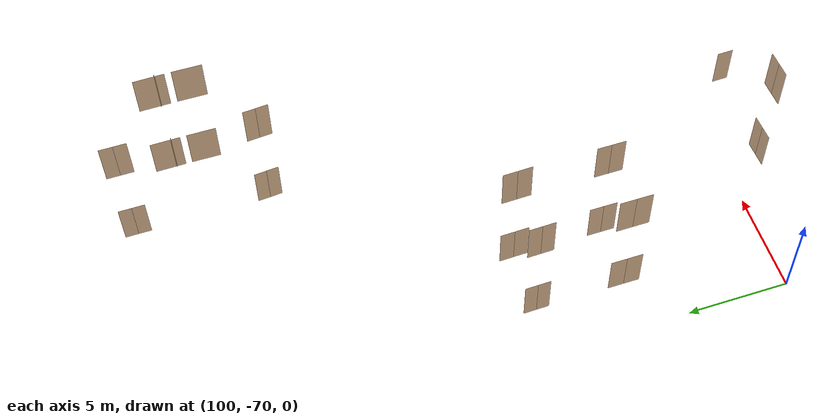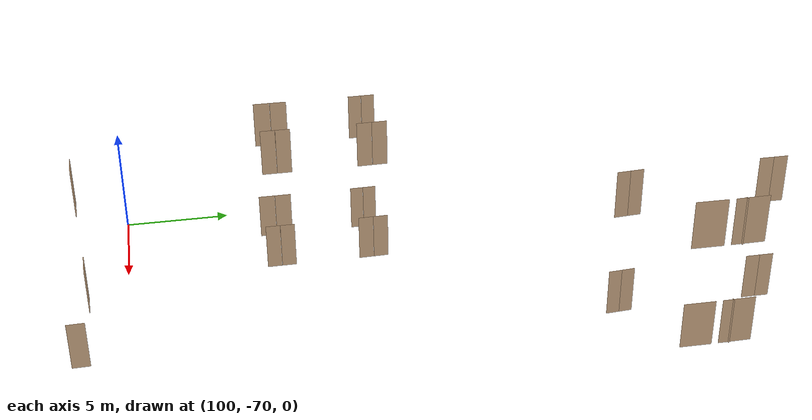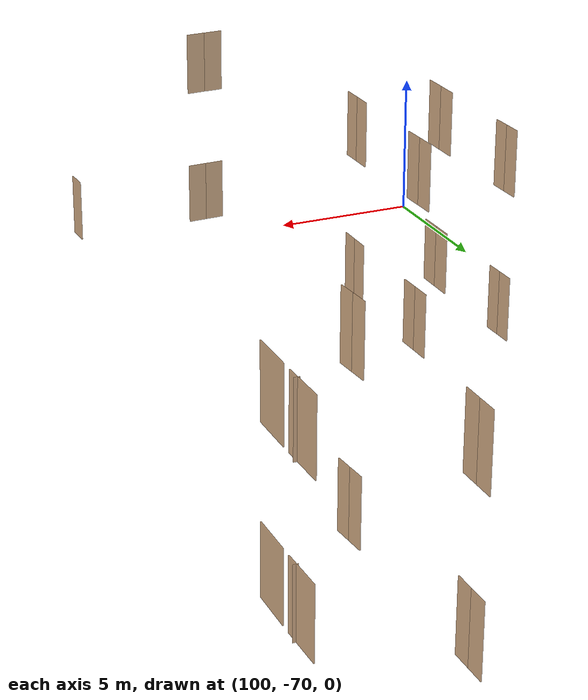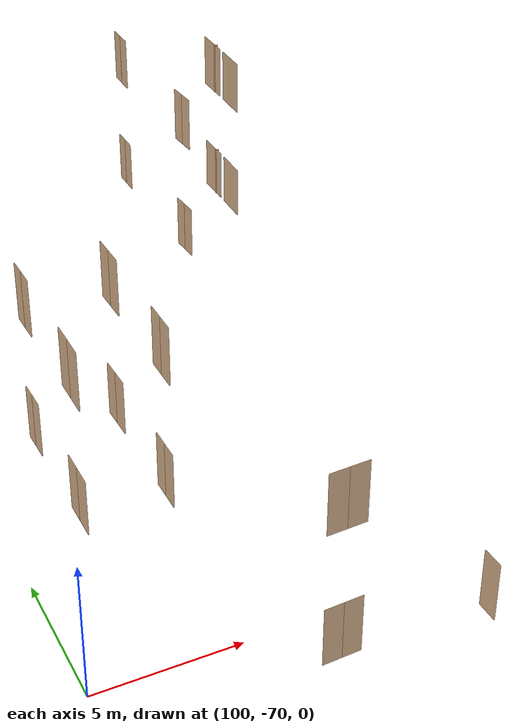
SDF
<sdf version="1.7">
 <world name="sim_world">
  <model name="nullA13">
   <pose>107.36898501058738 -71.7955524908058 0.0 0 0 0.049127123464644595</pose>
   <link name="right">
    <pose>0.3374000409255043 0 1.11 0 0 0</pose>
    <visual name="right_visual">
     <geometry><box><size>0.6648000818510086 0.03 2.2</size></box></geometry>
     <material>
      <ambient>0.5 0.25 0 0.6</ambient>
      <diffuse>0.5 0.25 0 0.6</diffuse>
      <pbr><metal><metalness>0.0</metalness></metal></pbr>
     </material>
    </visual>
    <collision name="right_collision">
     <geometry><box><size>0.6648000818510086 0.03 2.2</size></box></geometry>
     <surface><contact><collide_bitmask>0x02</collide_bitmask></contact></surface>
    </collision>
    <inertial>
     <mass>50.0</mass>
     <inertia><ixx>20.17041666666667</ixx><iyy>22.00816312012129</iyy><izz>1.8452464534546156</izz></inertia>
    </inertial>
   </link>
   <joint name="right_joint" type="revolute">
    <parent>world</parent>
    <child>right</child>
    <axis><xyz>0 0 -1</xyz><limit><lower>0</lower><upper>1.57</upper></limit></axis>
    <pose>0.3374000409255043 0 0 0 0 0</pose>
   </joint>
   <link name="left">
    <pose>-0.3374000409255043 0 1.11 0 0 0</pose>
    <visual name="left_visual">
     <geometry><box><size>0.6648000818510086 0.03 2.2</size></box></geometry>
     <material>
      <ambient>0.5 0.25 0 0.6</ambient>
      <diffuse>0.5 0.25 0 0.6</diffuse>
      <pbr><metal><metalness>0.0</metalness></metal></pbr>
     </material>
    </visual>
    <collision name="left_collision">
     <geometry><box><size>0.6648000818510086 0.03 2.2</size></box></geometry>
     <surface><contact><collide_bitmask>0x02</collide_bitmask></contact></surface>
    </collision>
    <inertial>
     <mass>50.0</mass>
     <inertia><ixx>20.17041666666667</ixx><iyy>22.00816312012129</iyy><izz>1.8452464534546156</izz></inertia>
    </inertial>
   </link>
   <joint name="left_joint" type="revolute">
    <parent>world</parent>
    <child>left</child>
    <axis><xyz>0 0 -1</xyz><limit><lower>-1.57</lower><upper>0</upper></limit></axis>
    <pose>-0.3374000409255043 0 0 0 0 0</pose>
   </joint>
   <plugin name="register_component" filename="libregister_component.so">
    <component name="Door">
     <v_max_door>0.5</v_max_door>
     <a_max_door>0.3</a_max_door>
     <a_nom_door>0.15</a_nom_door>
     <dx_min_door>0.01</dx_min_door>
     <f_max_door>500.0</f_max_door>
     <ros_interface>true</ros_interface>
     <door name="nullA13" type="DoubleSwingDoor" left_joint_name="left_joint" right_joint_name="right_joint"/>
    </component>
   </plugin>
  </model>
  <model name="nullA14">
   <pose>112.3087952747131 -72.03100793120106 0.0 0 0 1.5962024927042915</pose>
   <link name="right">
    <pose>0 0 1.11 0 0 0</pose>
    <visual name="right_visual">
     <geometry><box><size>0.7959692663468669 0.03 2.2</size></box></geometry>
     <material>
      <ambient>0.5 0.25 0 0.6</ambient>
      <diffuse>0.5 0.25 0 0.6</diffuse>
      <pbr><metal><metalness>0.0</metalness></metal></pbr>
     </material>
    </visual>
    <collision name="right_collision">
     <geometry><box><size>0.7959692663468669 0.03 2.2</size></box></geometry>
     <surface><contact><collide_bitmask>0x02</collide_bitmask></contact></surface>
    </collision>
    <inertial>
     <mass>50.0</mass>
     <inertia><ixx>20.17041666666667</ixx><iyy>22.80652947070321</iyy><izz>2.64361280403654</izz></inertia>
    </inertial>
   </link>
   <joint name="right_joint" type="revolute">
    <parent>world</parent>
    <child>right</child>
    <axis><xyz>0 0 -1</xyz><limit><lower>0</lower><upper>1.57</upper></limit></axis>
    <pose>0.40298463317343347 0 0 0 0 0</pose>
   </joint>
   <plugin name="register_component" filename="libregister_component.so">
    <component name="Door">
     <v_max_door>0.5</v_max_door>
     <a_max_door>0.3</a_max_door>
     <a_nom_door>0.15</a_nom_door>
     <dx_min_door>0.01</dx_min_door>
     <f_max_door>500.0</f_max_door>
     <ros_interface>true</ros_interface>
     <door name="nullA14" type="SwingDoor" left_joint_name="empty_joint" right_joint_name="right_joint"/>
    </component>
   </plugin>
  </model>
  <model name="nullA15">
   <pose>102.49811452877157 -62.665883483784725 0.0 0 0 -1.5707963267948966</pose>
   <link name="right">
    <pose>0.3940828504030609 0 1.11 0 0 0</pose>
    <visual name="right_visual">
     <geometry><box><size>0.7781657008061218 0.03 2.2</size></box></geometry>
     <material>
      <ambient>0.5 0.25 0 0.6</ambient>
      <diffuse>0.5 0.25 0 0.6</diffuse>
      <pbr><metal><metalness>0.0</metalness></metal></pbr>
     </material>
    </visual>
    <collision name="right_collision">
     <geometry><box><size>0.7781657008061218 0.03 2.2</size></box></geometry>
     <surface><contact><collide_bitmask>0x02</collide_bitmask></contact></surface>
    </collision>
    <inertial>
     <mass>50.0</mass>
     <inertia><ixx>20.17041666666667</ixx><iyy>22.68975774129618</iyy><izz>2.526841074629511</izz></inertia>
    </inertial>
   </link>
   <joint name="right_joint" type="revolute">
    <parent>world</parent>
    <child>right</child>
    <axis><xyz>0 0 -1</xyz><limit><lower>0</lower><upper>1.57</upper></limit></axis>
    <pose>0.3940828504030609 0 0 0 0 0</pose>
   </joint>
   <link name="left">
    <pose>-0.3940828504030609 0 1.11 0 0 0</pose>
    <visual name="left_visual">
     <geometry><box><size>0.7781657008061218 0.03 2.2</size></box></geometry>
     <material>
      <ambient>0.5 0.25 0 0.6</ambient>
      <diffuse>0.5 0.25 0 0.6</diffuse>
      <pbr><metal><metalness>0.0</metalness></metal></pbr>
     </material>
    </visual>
    <collision name="left_collision">
     <geometry><box><size>0.7781657008061218 0.03 2.2</size></box></geometry>
     <surface><contact><collide_bitmask>0x02</collide_bitmask></contact></surface>
    </collision>
    <inertial>
     <mass>50.0</mass>
     <inertia><ixx>20.17041666666667</ixx><iyy>22.68975774129618</iyy><izz>2.526841074629511</izz></inertia>
    </inertial>
   </link>
   <joint name="left_joint" type="revolute">
    <parent>world</parent>
    <child>left</child>
    <axis><xyz>0 0 -1</xyz><limit><lower>-1.57</lower><upper>0</upper></limit></axis>
    <pose>-0.3940828504030609 0 0 0 0 0</pose>
   </joint>
   <plugin name="register_component" filename="libregister_component.so">
    <component name="Door">
     <v_max_door>0.5</v_max_door>
     <a_max_door>0.3</a_max_door>
     <a_nom_door>0.15</a_nom_door>
     <dx_min_door>0.01</dx_min_door>
     <f_max_door>500.0</f_max_door>
     <ros_interface>true</ros_interface>
     <door name="nullA15" type="DoubleSwingDoor" left_joint_name="left_joint" right_joint_name="right_joint"/>
    </component>
   </plugin>
  </model>
  <model name="nullA16">
   <pose>105.55959619599547 -62.71038021471827 0.0 0 0 1.5707963267948966</pose>
   <link name="right">
    <pose>0.3463396671495982 0 1.11 0 0 0</pose>
    <visual name="right_visual">
     <geometry><box><size>0.6826793342991964 0.03 2.2</size></box></geometry>
     <material>
      <ambient>0.5 0.25 0 0.6</ambient>
      <diffuse>0.5 0.25 0 0.6</diffuse>
      <pbr><metal><metalness>0.0</metalness></metal></pbr>
     </material>
    </visual>
    <collision name="right_collision">
     <geometry><box><size>0.6826793342991964 0.03 2.2</size></box></geometry>
     <surface><contact><collide_bitmask>0x02</collide_bitmask></contact></surface>
    </collision>
    <inertial>
     <mass>50.0</mass>
     <inertia><ixx>20.17041666666667</ixx><iyy>22.108546139496646</iyy><izz>1.9456294728299748</izz></inertia>
    </inertial>
   </link>
   <joint name="right_joint" type="revolute">
    <parent>world</parent>
    <child>right</child>
    <axis><xyz>0 0 -1</xyz><limit><lower>0</lower><upper>1.57</upper></limit></axis>
    <pose>0.3463396671495982 0 0 0 0 0</pose>
   </joint>
   <link name="left">
    <pose>-0.3463396671495982 0 1.11 0 0 0</pose>
    <visual name="left_visual">
     <geometry><box><size>0.6826793342991964 0.03 2.2</size></box></geometry>
     <material>
      <ambient>0.5 0.25 0 0.6</ambient>
      <diffuse>0.5 0.25 0 0.6</diffuse>
      <pbr><metal><metalness>0.0</metalness></metal></pbr>
     </material>
    </visual>
    <collision name="left_collision">
     <geometry><box><size>0.6826793342991964 0.03 2.2</size></box></geometry>
     <surface><contact><collide_bitmask>0x02</collide_bitmask></contact></surface>
    </collision>
    <inertial>
     <mass>50.0</mass>
     <inertia><ixx>20.17041666666667</ixx><iyy>22.108546139496646</iyy><izz>1.9456294728299748</izz></inertia>
    </inertial>
   </link>
   <joint name="left_joint" type="revolute">
    <parent>world</parent>
    <child>left</child>
    <axis><xyz>0 0 -1</xyz><limit><lower>-1.57</lower><upper>0</upper></limit></axis>
    <pose>-0.3463396671495982 0 0 0 0 0</pose>
   </joint>
   <plugin name="register_component" filename="libregister_component.so">
    <component name="Door">
     <v_max_door>0.5</v_max_door>
     <a_max_door>0.3</a_max_door>
     <a_nom_door>0.15</a_nom_door>
     <dx_min_door>0.01</dx_min_door>
     <f_max_door>500.0</f_max_door>
     <ros_interface>true</ros_interface>
     <door name="nullA16" type="DoubleSwingDoor" left_joint_name="left_joint" right_joint_name="right_joint"/>
    </component>
   </plugin>
  </model>
  <model name="nullA17">
   <pose>102.48714811099973 -58.25309233255325 0.0 0 0 -1.5534430454923887</pose>
   <link name="right">
    <pose>0.3159911949177678 0 1.11 0 0 0</pose>
    <visual name="right_visual">
     <geometry><box><size>0.6219823898355356 0.03 2.2</size></box></geometry>
     <material>
      <ambient>0.5 0.25 0 0.6</ambient>
      <diffuse>0.5 0.25 0 0.6</diffuse>
      <pbr><metal><metalness>0.0</metalness></metal></pbr>
     </material>
    </visual>
    <collision name="right_collision">
     <geometry><box><size>0.6219823898355356 0.03 2.2</size></box></geometry>
     <surface><contact><collide_bitmask>0x02</collide_bitmask></contact></surface>
    </collision>
    <inertial>
     <mass>50.0</mass>
     <inertia><ixx>20.17041666666667</ixx><iyy>21.77859205527302</iyy><izz>1.6156753886063506</izz></inertia>
    </inertial>
   </link>
   <joint name="right_joint" type="revolute">
    <parent>world</parent>
    <child>right</child>
    <axis><xyz>0 0 -1</xyz><limit><lower>0</lower><upper>1.57</upper></limit></axis>
    <pose>0.3159911949177678 0 0 0 0 0</pose>
   </joint>
   <link name="left">
    <pose>-0.3159911949177678 0 1.11 0 0 0</pose>
    <visual name="left_visual">
     <geometry><box><size>0.6219823898355356 0.03 2.2</size></box></geometry>
     <material>
      <ambient>0.5 0.25 0 0.6</ambient>
      <diffuse>0.5 0.25 0 0.6</diffuse>
      <pbr><metal><metalness>0.0</metalness></metal></pbr>
     </material>
    </visual>
    <collision name="left_collision">
     <geometry><box><size>0.6219823898355356 0.03 2.2</size></box></geometry>
     <surface><contact><collide_bitmask>0x02</collide_bitmask></contact></surface>
    </collision>
    <inertial>
     <mass>50.0</mass>
     <inertia><ixx>20.17041666666667</ixx><iyy>21.77859205527302</iyy><izz>1.6156753886063506</izz></inertia>
    </inertial>
   </link>
   <joint name="left_joint" type="revolute">
    <parent>world</parent>
    <child>left</child>
    <axis><xyz>0 0 -1</xyz><limit><lower>-1.57</lower><upper>0</upper></limit></axis>
    <pose>-0.3159911949177678 0 0 0 0 0</pose>
   </joint>
   <plugin name="register_component" filename="libregister_component.so">
    <component name="Door">
     <v_max_door>0.5</v_max_door>
     <a_max_door>0.3</a_max_door>
     <a_nom_door>0.15</a_nom_door>
     <dx_min_door>0.01</dx_min_door>
     <f_max_door>500.0</f_max_door>
     <ros_interface>true</ros_interface>
     <door name="nullA17" type="DoubleSwingDoor" left_joint_name="left_joint" right_joint_name="right_joint"/>
    </component>
   </plugin>
  </model>
  <model name="nullA18">
   <pose>105.56303196626925 -58.22641953638698 0.0 0 0 1.59237232780342</pose>
   <link name="right">
    <pose>0.35783111303596443 0 1.11 0 0 0</pose>
    <visual name="right_visual">
     <geometry><box><size>0.7056622260719289 0.03 2.2</size></box></geometry>
     <material>
      <ambient>0.5 0.25 0 0.6</ambient>
      <diffuse>0.5 0.25 0 0.6</diffuse>
      <pbr><metal><metalness>0.0</metalness></metal></pbr>
     </material>
    </visual>
    <collision name="right_collision">
     <geometry><box><size>0.7056622260719289 0.03 2.2</size></box></geometry>
     <surface><contact><collide_bitmask>0x02</collide_bitmask></contact></surface>
    </collision>
    <inertial>
     <mass>50.0</mass>
     <inertia><ixx>20.17041666666667</ixx><iyy>22.241496572103298</iyy><izz>2.078579905436625</izz></inertia>
    </inertial>
   </link>
   <joint name="right_joint" type="revolute">
    <parent>world</parent>
    <child>right</child>
    <axis><xyz>0 0 -1</xyz><limit><lower>0</lower><upper>1.57</upper></limit></axis>
    <pose>0.35783111303596443 0 0 0 0 0</pose>
   </joint>
   <link name="left">
    <pose>-0.35783111303596443 0 1.11 0 0 0</pose>
    <visual name="left_visual">
     <geometry><box><size>0.7056622260719289 0.03 2.2</size></box></geometry>
     <material>
      <ambient>0.5 0.25 0 0.6</ambient>
      <diffuse>0.5 0.25 0 0.6</diffuse>
      <pbr><metal><metalness>0.0</metalness></metal></pbr>
     </material>
    </visual>
    <collision name="left_collision">
     <geometry><box><size>0.7056622260719289 0.03 2.2</size></box></geometry>
     <surface><contact><collide_bitmask>0x02</collide_bitmask></contact></surface>
    </collision>
    <inertial>
     <mass>50.0</mass>
     <inertia><ixx>20.17041666666667</ixx><iyy>22.241496572103298</iyy><izz>2.078579905436625</izz></inertia>
    </inertial>
   </link>
   <joint name="left_joint" type="revolute">
    <parent>world</parent>
    <child>left</child>
    <axis><xyz>0 0 -1</xyz><limit><lower>-1.57</lower><upper>0</upper></limit></axis>
    <pose>-0.35783111303596443 0 0 0 0 0</pose>
   </joint>
   <plugin name="register_component" filename="libregister_component.so">
    <component name="Door">
     <v_max_door>0.5</v_max_door>
     <a_max_door>0.3</a_max_door>
     <a_nom_door>0.15</a_nom_door>
     <dx_min_door>0.01</dx_min_door>
     <f_max_door>500.0</f_max_door>
     <ros_interface>true</ros_interface>
     <door name="nullA18" type="DoubleSwingDoor" left_joint_name="left_joint" right_joint_name="right_joint"/>
    </component>
   </plugin>
  </model>
  <model name="nullA19">
   <pose>112.65758906348682 -48.05892352984884 0.0 0 0 -1.4988063360851256</pose>
   <link name="right">
    <pose>0.30668308941766353 0 1.11 0 0 0</pose>
    <visual name="right_visual">
     <geometry><box><size>0.6033661788353271 0.03 2.2</size></box></geometry>
     <material>
      <ambient>0.5 0.25 0 0.6</ambient>
      <diffuse>0.5 0.25 0 0.6</diffuse>
      <pbr><metal><metalness>0.0</metalness></metal></pbr>
     </material>
    </visual>
    <collision name="right_collision">
     <geometry><box><size>0.6033661788353271 0.03 2.2</size></box></geometry>
     <surface><contact><collide_bitmask>0x02</collide_bitmask></contact></surface>
    </collision>
    <inertial>
     <mass>50.0</mass>
     <inertia><ixx>20.17041666666667</ixx><iyy>21.68354477400977</iyy><izz>1.5206281073430996</izz></inertia>
    </inertial>
   </link>
   <joint name="right_joint" type="revolute">
    <parent>world</parent>
    <child>right</child>
    <axis><xyz>0 0 -1</xyz><limit><lower>0</lower><upper>1.57</upper></limit></axis>
    <pose>0.30668308941766353 0 0 0 0 0</pose>
   </joint>
   <link name="left">
    <pose>-0.30668308941766353 0 1.11 0 0 0</pose>
    <visual name="left_visual">
     <geometry><box><size>0.6033661788353271 0.03 2.2</size></box></geometry>
     <material>
      <ambient>0.5 0.25 0 0.6</ambient>
      <diffuse>0.5 0.25 0 0.6</diffuse>
      <pbr><metal><metalness>0.0</metalness></metal></pbr>
     </material>
    </visual>
    <collision name="left_collision">
     <geometry><box><size>0.6033661788353271 0.03 2.2</size></box></geometry>
     <surface><contact><collide_bitmask>0x02</collide_bitmask></contact></surface>
    </collision>
    <inertial>
     <mass>50.0</mass>
     <inertia><ixx>20.17041666666667</ixx><iyy>21.68354477400977</iyy><izz>1.5206281073430996</izz></inertia>
    </inertial>
   </link>
   <joint name="left_joint" type="revolute">
    <parent>world</parent>
    <child>left</child>
    <axis><xyz>0 0 -1</xyz><limit><lower>-1.57</lower><upper>0</upper></limit></axis>
    <pose>-0.30668308941766353 0 0 0 0 0</pose>
   </joint>
   <plugin name="register_component" filename="libregister_component.so">
    <component name="Door">
     <v_max_door>0.5</v_max_door>
     <a_max_door>0.3</a_max_door>
     <a_nom_door>0.15</a_nom_door>
     <dx_min_door>0.01</dx_min_door>
     <f_max_door>500.0</f_max_door>
     <ros_interface>true</ros_interface>
     <door name="nullA19" type="DoubleSwingDoor" left_joint_name="left_joint" right_joint_name="right_joint"/>
    </component>
   </plugin>
  </model>
  <model name="nullA20">
   <pose>112.61347096846102 -41.44568278910809 0.0 0 0 -1.5707963267948966</pose>
   <link name="right">
    <pose>0.32451902002303257 0 1.11 0 0 0</pose>
    <visual name="right_visual">
     <geometry><box><size>0.6390380400460651 0.03 2.2</size></box></geometry>
     <material>
      <ambient>0.5 0.25 0 0.6</ambient>
      <diffuse>0.5 0.25 0 0.6</diffuse>
      <pbr><metal><metalness>0.0</metalness></metal></pbr>
     </material>
    </visual>
    <collision name="right_collision">
     <geometry><box><size>0.6390380400460651 0.03 2.2</size></box></geometry>
     <surface><contact><collide_bitmask>0x02</collide_bitmask></contact></surface>
    </collision>
    <inertial>
     <mass>50.0</mass>
     <inertia><ixx>20.17041666666667</ixx><iyy>21.86820673594132</iyy><izz>1.7052900692746515</izz></inertia>
    </inertial>
   </link>
   <joint name="right_joint" type="revolute">
    <parent>world</parent>
    <child>right</child>
    <axis><xyz>0 0 -1</xyz><limit><lower>0</lower><upper>1.57</upper></limit></axis>
    <pose>0.32451902002303257 0 0 0 0 0</pose>
   </joint>
   <link name="left">
    <pose>-0.32451902002303257 0 1.11 0 0 0</pose>
    <visual name="left_visual">
     <geometry><box><size>0.6390380400460651 0.03 2.2</size></box></geometry>
     <material>
      <ambient>0.5 0.25 0 0.6</ambient>
      <diffuse>0.5 0.25 0 0.6</diffuse>
      <pbr><metal><metalness>0.0</metalness></metal></pbr>
     </material>
    </visual>
    <collision name="left_collision">
     <geometry><box><size>0.6390380400460651 0.03 2.2</size></box></geometry>
     <surface><contact><collide_bitmask>0x02</collide_bitmask></contact></surface>
    </collision>
    <inertial>
     <mass>50.0</mass>
     <inertia><ixx>20.17041666666667</ixx><iyy>21.86820673594132</iyy><izz>1.7052900692746515</izz></inertia>
    </inertial>
   </link>
   <joint name="left_joint" type="revolute">
    <parent>world</parent>
    <child>left</child>
    <axis><xyz>0 0 -1</xyz><limit><lower>-1.57</lower><upper>0</upper></limit></axis>
    <pose>-0.32451902002303257 0 0 0 0 0</pose>
   </joint>
   <plugin name="register_component" filename="libregister_component.so">
    <component name="Door">
     <v_max_door>0.5</v_max_door>
     <a_max_door>0.3</a_max_door>
     <a_nom_door>0.15</a_nom_door>
     <dx_min_door>0.01</dx_min_door>
     <f_max_door>500.0</f_max_door>
     <ros_interface>true</ros_interface>
     <door name="nullA20" type="DoubleSwingDoor" left_joint_name="left_joint" right_joint_name="right_joint"/>
    </component>
   </plugin>
  </model>
  <model name="nullA33">
   <pose>115.93593094097113 -45.62506593855644 0.0 0 0 1.5583194605857504</pose>
   <link name="right">
    <pose>0 0 1.11 0 0 0</pose>
    <visual name="right_visual">
     <geometry><box><size>1.4556874687365362 0.03 2.2</size></box></geometry>
     <material>
      <ambient>0.5 0.25 0 0.6</ambient>
      <diffuse>0.5 0.25 0 0.6</diffuse>
      <pbr><metal><metalness>0.0</metalness></metal></pbr>
     </material>
    </visual>
    <collision name="right_collision">
     <geometry><box><size>1.4556874687365362 0.03 2.2</size></box></geometry>
     <surface><contact><collide_bitmask>0x02</collide_bitmask></contact></surface>
    </collision>
    <inertial>
     <mass>50.0</mass>
     <inertia><ixx>20.17041666666667</ixx><iyy>28.995941694319104</iyy><izz>8.833025027652434</izz></inertia>
    </inertial>
   </link>
   <joint name="right_joint" type="prismatic">
    <parent>world</parent>
    <child>right</child>
    <axis>
     <xyz>1 0 0</xyz>
     <limit><lower>0.0</lower><upper>1.4656874687365362</upper><effort>500.0</effort></limit>
    </axis>
   </joint>
   <plugin name="register_component" filename="libregister_component.so">
    <component name="Door">
     <v_max_door>0.2</v_max_door>
     <a_max_door>0.2</a_max_door>
     <a_nom_door>0.08</a_nom_door>
     <dx_min_door>0.001</dx_min_door>
     <f_max_door>100.0</f_max_door>
     <ros_interface>true</ros_interface>
     <door name="nullA33" type="SlidingDoor" left_joint_name="empty_joint" right_joint_name="right_joint"/>
    </component>
   </plugin>
  </model>
  <model name="nullA34">
   <pose>115.93793630892685 -43.82167920427953 0.0 0 0 1.580233682194616</pose>
   <link name="right">
    <pose>0 0 1.11 0 0 0</pose>
    <visual name="right_visual">
     <geometry><box><size>1.502731839136134 0.03 2.2</size></box></geometry>
     <material>
      <ambient>0.5 0.25 0 0.6</ambient>
      <diffuse>0.5 0.25 0 0.6</diffuse>
      <pbr><metal><metalness>0.0</metalness></metal></pbr>
     </material>
    </visual>
    <collision name="right_collision">
     <geometry><box><size>1.502731839136134 0.03 2.2</size></box></geometry>
     <surface><contact><collide_bitmask>0x02</collide_bitmask></contact></surface>
    </collision>
    <inertial>
     <mass>50.0</mass>
     <inertia><ixx>20.17041666666667</ixx><iyy>29.575845751472787</iyy><izz>9.412929084806116</izz></inertia>
    </inertial>
   </link>
   <joint name="right_joint" type="prismatic">
    <parent>world</parent>
    <child>right</child>
    <axis>
     <xyz>1 0 0</xyz>
     <limit><lower>0.0</lower><upper>1.512731839136134</upper><effort>500.0</effort></limit>
    </axis>
   </joint>
   <plugin name="register_component" filename="libregister_component.so">
    <component name="Door">
     <v_max_door>0.2</v_max_door>
     <a_max_door>0.2</a_max_door>
     <a_nom_door>0.08</a_nom_door>
     <dx_min_door>0.001</dx_min_door>
     <f_max_door>100.0</f_max_door>
     <ros_interface>true</ros_interface>
     <door name="nullA34" type="SlidingDoor" left_joint_name="empty_joint" right_joint_name="right_joint"/>
    </component>
   </plugin>
  </model>
  <model name="nullA35">
   <pose>115.96683884988306 -44.10881143430294 0.0 0 0 3.141592653589793</pose>
   <link name="right">
    <pose>0 0 1.11 0 0 0</pose>
    <visual name="right_visual">
     <geometry><box><size>0.15721683569227252 0.03 2.2</size></box></geometry>
     <material>
      <ambient>0.5 0.25 0 0.6</ambient>
      <diffuse>0.5 0.25 0 0.6</diffuse>
      <pbr><metal><metalness>0.0</metalness></metal></pbr>
     </material>
    </visual>
    <collision name="right_collision">
     <geometry><box><size>0.15721683569227252 0.03 2.2</size></box></geometry>
     <surface><contact><collide_bitmask>0x02</collide_bitmask></contact></surface>
    </collision>
    <inertial>
     <mass>50.0</mass>
     <inertia><ixx>20.17041666666667</ixx><iyy>20.269654722604553</iyy><izz>0.10673805593787923</izz></inertia>
    </inertial>
   </link>
   <joint name="right_joint" type="revolute">
    <parent>world</parent>
    <child>right</child>
    <axis><xyz>0 0 -1</xyz><limit><lower>0</lower><upper>1.57</upper></limit></axis>
    <pose>0.08360841784613626 0 0 0 0 0</pose>
   </joint>
   <plugin name="register_component" filename="libregister_component.so">
    <component name="Door">
     <v_max_door>0.5</v_max_door>
     <a_max_door>0.3</a_max_door>
     <a_nom_door>0.15</a_nom_door>
     <dx_min_door>0.01</dx_min_door>
     <f_max_door>500.0</f_max_door>
     <ros_interface>true</ros_interface>
     <door name="nullA35" type="SwingDoor" left_joint_name="empty_joint" right_joint_name="right_joint"/>
    </component>
   </plugin>
  </model>
  <model name="anullA13">
   <pose>107.37138278635345 -71.76857914019904 5.0 0 0 0.04912798528349174</pose>
   <link name="right">
    <pose>0.3374014948161093 0 1.11 0 0 0</pose>
    <visual name="right_visual">
     <geometry><box><size>0.6648029896322186 0.03 2.2</size></box></geometry>
     <material>
      <ambient>0.5 0.25 0 0.6</ambient>
      <diffuse>0.5 0.25 0 0.6</diffuse>
      <pbr><metal><metalness>0.0</metalness></metal></pbr>
     </material>
    </visual>
    <collision name="right_collision">
     <geometry><box><size>0.6648029896322186 0.03 2.2</size></box></geometry>
     <surface><contact><collide_bitmask>0x02</collide_bitmask></contact></surface>
    </collision>
    <inertial>
     <mass>50.0</mass>
     <inertia><ixx>20.17041666666667</ixx><iyy>22.008179229266407</iyy><izz>1.8452625625997325</izz></inertia>
    </inertial>
   </link>
   <joint name="right_joint" type="revolute">
    <parent>world</parent>
    <child>right</child>
    <axis><xyz>0 0 -1</xyz><limit><lower>0</lower><upper>1.57</upper></limit></axis>
    <pose>0.3374014948161093 0 0 0 0 0</pose>
   </joint>
   <link name="left">
    <pose>-0.3374014948161093 0 1.11 0 0 0</pose>
    <visual name="left_visual">
     <geometry><box><size>0.6648029896322186 0.03 2.2</size></box></geometry>
     <material>
      <ambient>0.5 0.25 0 0.6</ambient>
      <diffuse>0.5 0.25 0 0.6</diffuse>
      <pbr><metal><metalness>0.0</metalness></metal></pbr>
     </material>
    </visual>
    <collision name="left_collision">
     <geometry><box><size>0.6648029896322186 0.03 2.2</size></box></geometry>
     <surface><contact><collide_bitmask>0x02</collide_bitmask></contact></surface>
    </collision>
    <inertial>
     <mass>50.0</mass>
     <inertia><ixx>20.17041666666667</ixx><iyy>22.008179229266407</iyy><izz>1.8452625625997325</izz></inertia>
    </inertial>
   </link>
   <joint name="left_joint" type="revolute">
    <parent>world</parent>
    <child>left</child>
    <axis><xyz>0 0 -1</xyz><limit><lower>-1.57</lower><upper>0</upper></limit></axis>
    <pose>-0.3374014948161093 0 0 0 0 0</pose>
   </joint>
   <plugin name="register_component" filename="libregister_component.so">
    <component name="Door">
     <v_max_door>0.5</v_max_door>
     <a_max_door>0.3</a_max_door>
     <a_nom_door>0.15</a_nom_door>
     <dx_min_door>0.01</dx_min_door>
     <f_max_door>500.0</f_max_door>
     <ros_interface>true</ros_interface>
     <door name="anullA13" type="DoubleSwingDoor" left_joint_name="left_joint" right_joint_name="right_joint"/>
    </component>
   </plugin>
  </model>
  <model name="anullA15">
   <pose>102.50048344731549 -62.63887499034825 5.0 0 0 -1.5707954649760598</pose>
   <link name="right">
    <pose>0.39408454854557534 0 1.11 0 0 0</pose>
    <visual name="right_visual">
     <geometry><box><size>0.7781690970911507 0.03 2.2</size></box></geometry>
     <material>
      <ambient>0.5 0.25 0 0.6</ambient>
      <diffuse>0.5 0.25 0 0.6</diffuse>
      <pbr><metal><metalness>0.0</metalness></metal></pbr>
     </material>
    </visual>
    <collision name="right_collision">
     <geometry><box><size>0.7781690970911507 0.03 2.2</size></box></geometry>
     <surface><contact><collide_bitmask>0x02</collide_bitmask></contact></surface>
    </collision>
    <inertial>
     <mass>50.0</mass>
     <inertia><ixx>20.17041666666667</ixx><iyy>22.68977976528191</iyy><izz>2.5268630986152365</izz></inertia>
    </inertial>
   </link>
   <joint name="right_joint" type="revolute">
    <parent>world</parent>
    <child>right</child>
    <axis><xyz>0 0 -1</xyz><limit><lower>0</lower><upper>1.57</upper></limit></axis>
    <pose>0.39408454854557534 0 0 0 0 0</pose>
   </joint>
   <link name="left">
    <pose>-0.39408454854557534 0 1.11 0 0 0</pose>
    <visual name="left_visual">
     <geometry><box><size>0.7781690970911507 0.03 2.2</size></box></geometry>
     <material>
      <ambient>0.5 0.25 0 0.6</ambient>
      <diffuse>0.5 0.25 0 0.6</diffuse>
      <pbr><metal><metalness>0.0</metalness></metal></pbr>
     </material>
    </visual>
    <collision name="left_collision">
     <geometry><box><size>0.7781690970911507 0.03 2.2</size></box></geometry>
     <surface><contact><collide_bitmask>0x02</collide_bitmask></contact></surface>
    </collision>
    <inertial>
     <mass>50.0</mass>
     <inertia><ixx>20.17041666666667</ixx><iyy>22.68977976528191</iyy><izz>2.5268630986152365</izz></inertia>
    </inertial>
   </link>
   <joint name="left_joint" type="revolute">
    <parent>world</parent>
    <child>left</child>
    <axis><xyz>0 0 -1</xyz><limit><lower>-1.57</lower><upper>0</upper></limit></axis>
    <pose>-0.39408454854557534 0 0 0 0 0</pose>
   </joint>
   <plugin name="register_component" filename="libregister_component.so">
    <component name="Door">
     <v_max_door>0.5</v_max_door>
     <a_max_door>0.3</a_max_door>
     <a_nom_door>0.15</a_nom_door>
     <dx_min_door>0.01</dx_min_door>
     <f_max_door>500.0</f_max_door>
     <ros_interface>true</ros_interface>
     <door name="anullA15" type="DoubleSwingDoor" left_joint_name="left_joint" right_joint_name="right_joint"/>
    </component>
   </plugin>
  </model>
  <model name="anullA16">
   <pose>105.561978345118 -62.683369274568705 5.0 0 0 1.570797188613735</pose>
   <link name="right">
    <pose>0.34634115956194905 0 1.11 0 0 0</pose>
    <visual name="right_visual">
     <geometry><box><size>0.6826823191238981 0.03 2.2</size></box></geometry>
     <material>
      <ambient>0.5 0.25 0 0.6</ambient>
      <diffuse>0.5 0.25 0 0.6</diffuse>
      <pbr><metal><metalness>0.0</metalness></metal></pbr>
     </material>
    </visual>
    <collision name="right_collision">
     <geometry><box><size>0.6826823191238981 0.03 2.2</size></box></geometry>
     <surface><contact><collide_bitmask>0x02</collide_bitmask></contact></surface>
    </collision>
    <inertial>
     <mass>50.0</mass>
     <inertia><ixx>20.17041666666667</ixx><iyy>22.108563120184936</iyy><izz>1.945646453518266</izz></inertia>
    </inertial>
   </link>
   <joint name="right_joint" type="revolute">
    <parent>world</parent>
    <child>right</child>
    <axis><xyz>0 0 -1</xyz><limit><lower>0</lower><upper>1.57</upper></limit></axis>
    <pose>0.34634115956194905 0 0 0 0 0</pose>
   </joint>
   <link name="left">
    <pose>-0.34634115956194905 0 1.11 0 0 0</pose>
    <visual name="left_visual">
     <geometry><box><size>0.6826823191238981 0.03 2.2</size></box></geometry>
     <material>
      <ambient>0.5 0.25 0 0.6</ambient>
      <diffuse>0.5 0.25 0 0.6</diffuse>
      <pbr><metal><metalness>0.0</metalness></metal></pbr>
     </material>
    </visual>
    <collision name="left_collision">
     <geometry><box><size>0.6826823191238981 0.03 2.2</size></box></geometry>
     <surface><contact><collide_bitmask>0x02</collide_bitmask></contact></surface>
    </collision>
    <inertial>
     <mass>50.0</mass>
     <inertia><ixx>20.17041666666667</ixx><iyy>22.108563120184936</iyy><izz>1.945646453518266</izz></inertia>
    </inertial>
   </link>
   <joint name="left_joint" type="revolute">
    <parent>world</parent>
    <child>left</child>
    <axis><xyz>0 0 -1</xyz><limit><lower>-1.57</lower><upper>0</upper></limit></axis>
    <pose>-0.34634115956194905 0 0 0 0 0</pose>
   </joint>
   <plugin name="register_component" filename="libregister_component.so">
    <component name="Door">
     <v_max_door>0.5</v_max_door>
     <a_max_door>0.3</a_max_door>
     <a_nom_door>0.15</a_nom_door>
     <dx_min_door>0.01</dx_min_door>
     <f_max_door>500.0</f_max_door>
     <ros_interface>true</ros_interface>
     <door name="anullA16" type="DoubleSwingDoor" left_joint_name="left_joint" right_joint_name="right_joint"/>
    </component>
   </plugin>
  </model>
  <model name="anullA17">
   <pose>102.48951317924534 -58.22606483340999 5.0 0 0 -1.5534421836735517</pose>
   <link name="right">
    <pose>0.31599255655550484 0 1.11 0 0 0</pose>
    <visual name="right_visual">
     <geometry><box><size>0.6219851131110097 0.03 2.2</size></box></geometry>
     <material>
      <ambient>0.5 0.25 0 0.6</ambient>
      <diffuse>0.5 0.25 0 0.6</diffuse>
      <pbr><metal><metalness>0.0</metalness></metal></pbr>
     </material>
    </visual>
    <collision name="right_collision">
     <geometry><box><size>0.6219851131110097 0.03 2.2</size></box></geometry>
     <surface><contact><collide_bitmask>0x02</collide_bitmask></contact></surface>
    </collision>
    <inertial>
     <mass>50.0</mass>
     <inertia><ixx>20.17041666666667</ixx><iyy>21.77860617054882</iyy><izz>1.6156895038821482</izz></inertia>
    </inertial>
   </link>
   <joint name="right_joint" type="revolute">
    <parent>world</parent>
    <child>right</child>
    <axis><xyz>0 0 -1</xyz><limit><lower>0</lower><upper>1.57</upper></limit></axis>
    <pose>0.31599255655550484 0 0 0 0 0</pose>
   </joint>
   <link name="left">
    <pose>-0.31599255655550484 0 1.11 0 0 0</pose>
    <visual name="left_visual">
     <geometry><box><size>0.6219851131110097 0.03 2.2</size></box></geometry>
     <material>
      <ambient>0.5 0.25 0 0.6</ambient>
      <diffuse>0.5 0.25 0 0.6</diffuse>
      <pbr><metal><metalness>0.0</metalness></metal></pbr>
     </material>
    </visual>
    <collision name="left_collision">
     <geometry><box><size>0.6219851131110097 0.03 2.2</size></box></geometry>
     <surface><contact><collide_bitmask>0x02</collide_bitmask></contact></surface>
    </collision>
    <inertial>
     <mass>50.0</mass>
     <inertia><ixx>20.17041666666667</ixx><iyy>21.77860617054882</iyy><izz>1.6156895038821482</izz></inertia>
    </inertial>
   </link>
   <joint name="left_joint" type="revolute">
    <parent>world</parent>
    <child>left</child>
    <axis><xyz>0 0 -1</xyz><limit><lower>-1.57</lower><upper>0</upper></limit></axis>
    <pose>-0.31599255655550484 0 0 0 0 0</pose>
   </joint>
   <plugin name="register_component" filename="libregister_component.so">
    <component name="Door">
     <v_max_door>0.5</v_max_door>
     <a_max_door>0.3</a_max_door>
     <a_nom_door>0.15</a_nom_door>
     <dx_min_door>0.01</dx_min_door>
     <f_max_door>500.0</f_max_door>
     <ros_interface>true</ros_interface>
     <door name="anullA17" type="DoubleSwingDoor" left_joint_name="left_joint" right_joint_name="right_joint"/>
    </component>
   </plugin>
  </model>
  <model name="anullA18">
   <pose>105.56541026581843 -58.1993892714419 5.0 0 0 1.592373189622252</pose>
   <link name="right">
    <pose>0.35783265496610794 0 1.11 0 0 0</pose>
    <visual name="right_visual">
     <geometry><box><size>0.7056653099322159 0.03 2.2</size></box></geometry>
     <material>
      <ambient>0.5 0.25 0 0.6</ambient>
      <diffuse>0.5 0.25 0 0.6</diffuse>
      <pbr><metal><metalness>0.0</metalness></metal></pbr>
     </material>
    </visual>
    <collision name="right_collision">
     <geometry><box><size>0.7056653099322159 0.03 2.2</size></box></geometry>
     <surface><contact><collide_bitmask>0x02</collide_bitmask></contact></surface>
    </collision>
    <inertial>
     <mass>50.0</mass>
     <inertia><ixx>20.17041666666667</ixx><iyy>22.241514706840547</iyy><izz>2.0785980401738766</izz></inertia>
    </inertial>
   </link>
   <joint name="right_joint" type="revolute">
    <parent>world</parent>
    <child>right</child>
    <axis><xyz>0 0 -1</xyz><limit><lower>0</lower><upper>1.57</upper></limit></axis>
    <pose>0.35783265496610794 0 0 0 0 0</pose>
   </joint>
   <link name="left">
    <pose>-0.35783265496610794 0 1.11 0 0 0</pose>
    <visual name="left_visual">
     <geometry><box><size>0.7056653099322159 0.03 2.2</size></box></geometry>
     <material>
      <ambient>0.5 0.25 0 0.6</ambient>
      <diffuse>0.5 0.25 0 0.6</diffuse>
      <pbr><metal><metalness>0.0</metalness></metal></pbr>
     </material>
    </visual>
    <collision name="left_collision">
     <geometry><box><size>0.7056653099322159 0.03 2.2</size></box></geometry>
     <surface><contact><collide_bitmask>0x02</collide_bitmask></contact></surface>
    </collision>
    <inertial>
     <mass>50.0</mass>
     <inertia><ixx>20.17041666666667</ixx><iyy>22.241514706840547</iyy><izz>2.0785980401738766</izz></inertia>
    </inertial>
   </link>
   <joint name="left_joint" type="revolute">
    <parent>world</parent>
    <child>left</child>
    <axis><xyz>0 0 -1</xyz><limit><lower>-1.57</lower><upper>0</upper></limit></axis>
    <pose>-0.35783265496610794 0 0 0 0 0</pose>
   </joint>
   <plugin name="register_component" filename="libregister_component.so">
    <component name="Door">
     <v_max_door>0.5</v_max_door>
     <a_max_door>0.3</a_max_door>
     <a_nom_door>0.15</a_nom_door>
     <dx_min_door>0.01</dx_min_door>
     <f_max_door>500.0</f_max_door>
     <ros_interface>true</ros_interface>
     <door name="anullA18" type="DoubleSwingDoor" left_joint_name="left_joint" right_joint_name="right_joint"/>
    </component>
   </plugin>
  </model>
  <model name="anullA19">
   <pose>112.65998917161387 -48.03184333789848 5.0 0 0 -1.498805474266279</pose>
   <link name="right">
    <pose>0.3066844109458442 0 1.11 0 0 0</pose>
    <visual name="right_visual">
     <geometry><box><size>0.6033688218916884 0.03 2.2</size></box></geometry>
     <material>
      <ambient>0.5 0.25 0 0.6</ambient>
      <diffuse>0.5 0.25 0 0.6</diffuse>
      <pbr><metal><metalness>0.0</metalness></metal></pbr>
     </material>
    </visual>
    <collision name="right_collision">
     <geometry><box><size>0.6033688218916884 0.03 2.2</size></box></geometry>
     <surface><contact><collide_bitmask>0x02</collide_bitmask></contact></surface>
    </collision>
    <inertial>
     <mass>50.0</mass>
     <inertia><ixx>20.17041666666667</ixx><iyy>21.683558063462353</iyy><izz>1.5206413967956833</izz></inertia>
    </inertial>
   </link>
   <joint name="right_joint" type="revolute">
    <parent>world</parent>
    <child>right</child>
    <axis><xyz>0 0 -1</xyz><limit><lower>0</lower><upper>1.57</upper></limit></axis>
    <pose>0.3066844109458442 0 0 0 0 0</pose>
   </joint>
   <link name="left">
    <pose>-0.3066844109458442 0 1.11 0 0 0</pose>
    <visual name="left_visual">
     <geometry><box><size>0.6033688218916884 0.03 2.2</size></box></geometry>
     <material>
      <ambient>0.5 0.25 0 0.6</ambient>
      <diffuse>0.5 0.25 0 0.6</diffuse>
      <pbr><metal><metalness>0.0</metalness></metal></pbr>
     </material>
    </visual>
    <collision name="left_collision">
     <geometry><box><size>0.6033688218916884 0.03 2.2</size></box></geometry>
     <surface><contact><collide_bitmask>0x02</collide_bitmask></contact></surface>
    </collision>
    <inertial>
     <mass>50.0</mass>
     <inertia><ixx>20.17041666666667</ixx><iyy>21.683558063462353</iyy><izz>1.5206413967956833</izz></inertia>
    </inertial>
   </link>
   <joint name="left_joint" type="revolute">
    <parent>world</parent>
    <child>left</child>
    <axis><xyz>0 0 -1</xyz><limit><lower>-1.57</lower><upper>0</upper></limit></axis>
    <pose>-0.3066844109458442 0 0 0 0 0</pose>
   </joint>
   <plugin name="register_component" filename="libregister_component.so">
    <component name="Door">
     <v_max_door>0.5</v_max_door>
     <a_max_door>0.3</a_max_door>
     <a_nom_door>0.15</a_nom_door>
     <dx_min_door>0.01</dx_min_door>
     <f_max_door>500.0</f_max_door>
     <ros_interface>true</ros_interface>
     <door name="anullA19" type="DoubleSwingDoor" left_joint_name="left_joint" right_joint_name="right_joint"/>
    </component>
   </plugin>
  </model>
  <model name="anullA20">
   <pose>112.61586518703875 -41.41857413806473 5.0 0 0 -1.5707954649760698</pose>
   <link name="right">
    <pose>0.32452041840802587 0 1.11 0 0 0</pose>
    <visual name="right_visual">
     <geometry><box><size>0.6390408368160517 0.03 2.2</size></box></geometry>
     <material>
      <ambient>0.5 0.25 0 0.6</ambient>
      <diffuse>0.5 0.25 0 0.6</diffuse>
      <pbr><metal><metalness>0.0</metalness></metal></pbr>
     </material>
    </visual>
    <collision name="right_collision">
     <geometry><box><size>0.6390408368160517 0.03 2.2</size></box></geometry>
     <surface><contact><collide_bitmask>0x02</collide_bitmask></contact></surface>
    </collision>
    <inertial>
     <mass>50.0</mass>
     <inertia><ixx>20.17041666666667</ixx><iyy>21.868221629660667</iyy><izz>1.7053049629939987</izz></inertia>
    </inertial>
   </link>
   <joint name="right_joint" type="revolute">
    <parent>world</parent>
    <child>right</child>
    <axis><xyz>0 0 -1</xyz><limit><lower>0</lower><upper>1.57</upper></limit></axis>
    <pose>0.32452041840802587 0 0 0 0 0</pose>
   </joint>
   <link name="left">
    <pose>-0.32452041840802587 0 1.11 0 0 0</pose>
    <visual name="left_visual">
     <geometry><box><size>0.6390408368160517 0.03 2.2</size></box></geometry>
     <material>
      <ambient>0.5 0.25 0 0.6</ambient>
      <diffuse>0.5 0.25 0 0.6</diffuse>
      <pbr><metal><metalness>0.0</metalness></metal></pbr>
     </material>
    </visual>
    <collision name="left_collision">
     <geometry><box><size>0.6390408368160517 0.03 2.2</size></box></geometry>
     <surface><contact><collide_bitmask>0x02</collide_bitmask></contact></surface>
    </collision>
    <inertial>
     <mass>50.0</mass>
     <inertia><ixx>20.17041666666667</ixx><iyy>21.868221629660667</iyy><izz>1.7053049629939987</izz></inertia>
    </inertial>
   </link>
   <joint name="left_joint" type="revolute">
    <parent>world</parent>
    <child>left</child>
    <axis><xyz>0 0 -1</xyz><limit><lower>-1.57</lower><upper>0</upper></limit></axis>
    <pose>-0.32452041840802587 0 0 0 0 0</pose>
   </joint>
   <plugin name="register_component" filename="libregister_component.so">
    <component name="Door">
     <v_max_door>0.5</v_max_door>
     <a_max_door>0.3</a_max_door>
     <a_nom_door>0.15</a_nom_door>
     <dx_min_door>0.01</dx_min_door>
     <f_max_door>500.0</f_max_door>
     <ros_interface>true</ros_interface>
     <door name="anullA20" type="DoubleSwingDoor" left_joint_name="left_joint" right_joint_name="right_joint"/>
    </component>
   </plugin>
  </model>
  <model name="anullA33">
   <pose>115.93834307824744 -45.597972433521626 5.0 0 0 1.5583203224045816</pose>
   <link name="right">
    <pose>0 0 1.11 0 0 0</pose>
    <visual name="right_visual">
     <geometry><box><size>1.4556937845308093 0.03 2.2</size></box></geometry>
     <material>
      <ambient>0.5 0.25 0 0.6</ambient>
      <diffuse>0.5 0.25 0 0.6</diffuse>
      <pbr><metal><metalness>0.0</metalness></metal></pbr>
     </material>
    </visual>
    <collision name="right_collision">
     <geometry><box><size>1.4556937845308093 0.03 2.2</size></box></geometry>
     <surface><contact><collide_bitmask>0x02</collide_bitmask></contact></surface>
    </collision>
    <inertial>
     <mass>50.0</mass>
     <inertia><ixx>20.17041666666667</ixx><iyy>28.996018309673463</iyy><izz>8.833101643006794</izz></inertia>
    </inertial>
   </link>
   <joint name="right_joint" type="prismatic">
    <parent>world</parent>
    <child>right</child>
    <axis>
     <xyz>1 0 0</xyz>
     <limit><lower>0.0</lower><upper>1.4656937845308093</upper><effort>500.0</effort></limit>
    </axis>
   </joint>
   <plugin name="register_component" filename="libregister_component.so">
    <component name="Door">
     <v_max_door>0.2</v_max_door>
     <a_max_door>0.2</a_max_door>
     <a_nom_door>0.08</a_nom_door>
     <dx_min_door>0.001</dx_min_door>
     <f_max_door>100.0</f_max_door>
     <ros_interface>true</ros_interface>
     <door name="anullA33" type="SlidingDoor" left_joint_name="empty_joint" right_joint_name="right_joint"/>
    </component>
   </plugin>
  </model>
  <model name="anullA34">
   <pose>115.94034690064512 -43.79457792654286 5.0 0 0 1.5802345440134526</pose>
   <link name="right">
    <pose>0 0 1.11 0 0 0</pose>
    <visual name="right_visual">
     <geometry><box><size>1.502738357649301 0.03 2.2</size></box></geometry>
     <material>
      <ambient>0.5 0.25 0 0.6</ambient>
      <diffuse>0.5 0.25 0 0.6</diffuse>
      <pbr><metal><metalness>0.0</metalness></metal></pbr>
     </material>
    </visual>
    <collision name="right_collision">
     <geometry><box><size>1.502738357649301 0.03 2.2</size></box></geometry>
     <surface><contact><collide_bitmask>0x02</collide_bitmask></contact></surface>
    </collision>
    <inertial>
     <mass>50.0</mass>
     <inertia><ixx>20.17041666666667</ixx><iyy>29.575927381460495</iyy><izz>9.413010714793828</izz></inertia>
    </inertial>
   </link>
   <joint name="right_joint" type="prismatic">
    <parent>world</parent>
    <child>right</child>
    <axis>
     <xyz>1 0 0</xyz>
     <limit><lower>0.0</lower><upper>1.512738357649301</upper><effort>500.0</effort></limit>
    </axis>
   </joint>
   <plugin name="register_component" filename="libregister_component.so">
    <component name="Door">
     <v_max_door>0.2</v_max_door>
     <a_max_door>0.2</a_max_door>
     <a_nom_door>0.08</a_nom_door>
     <dx_min_door>0.001</dx_min_door>
     <f_max_door>100.0</f_max_door>
     <ros_interface>true</ros_interface>
     <door name="anullA34" type="SlidingDoor" left_joint_name="empty_joint" right_joint_name="right_joint"/>
    </component>
   </plugin>
  </model>
  <model name="anullA35">
   <pose>115.96924981360232 -44.08171136893887 5.0 0 0 -3.1415917917709963</pose>
   <link name="right">
    <pose>0 0 1.11 0 0 0</pose>
    <visual name="right_visual">
     <geometry><box><size>0.15721755624637593 0.03 2.2</size></box></geometry>
     <material>
      <ambient>0.5 0.25 0 0.6</ambient>
      <diffuse>0.5 0.25 0 0.6</diffuse>
      <pbr><metal><metalness>0.0</metalness></metal></pbr>
     </material>
    </visual>
    <collision name="right_collision">
     <geometry><box><size>0.15721755624637593 0.03 2.2</size></box></geometry>
     <surface><contact><collide_bitmask>0x02</collide_bitmask></contact></surface>
    </collision>
    <inertial>
     <mass>50.0</mass>
     <inertia><ixx>20.17041666666667</ixx><iyy>20.269655666633682</iyy><izz>0.10673899996700993</izz></inertia>
    </inertial>
   </link>
   <joint name="right_joint" type="revolute">
    <parent>world</parent>
    <child>right</child>
    <axis><xyz>0 0 -1</xyz><limit><lower>0</lower><upper>1.57</upper></limit></axis>
    <pose>0.08360877812318797 0 0 0 0 0</pose>
   </joint>
   <plugin name="register_component" filename="libregister_component.so">
    <component name="Door">
     <v_max_door>0.5</v_max_door>
     <a_max_door>0.3</a_max_door>
     <a_nom_door>0.15</a_nom_door>
     <dx_min_door>0.01</dx_min_door>
     <f_max_door>500.0</f_max_door>
     <ros_interface>true</ros_interface>
     <door name="anullA35" type="SwingDoor" left_joint_name="empty_joint" right_joint_name="right_joint"/>
    </component>
   </plugin>
  </model>
 </world>
</sdf>
